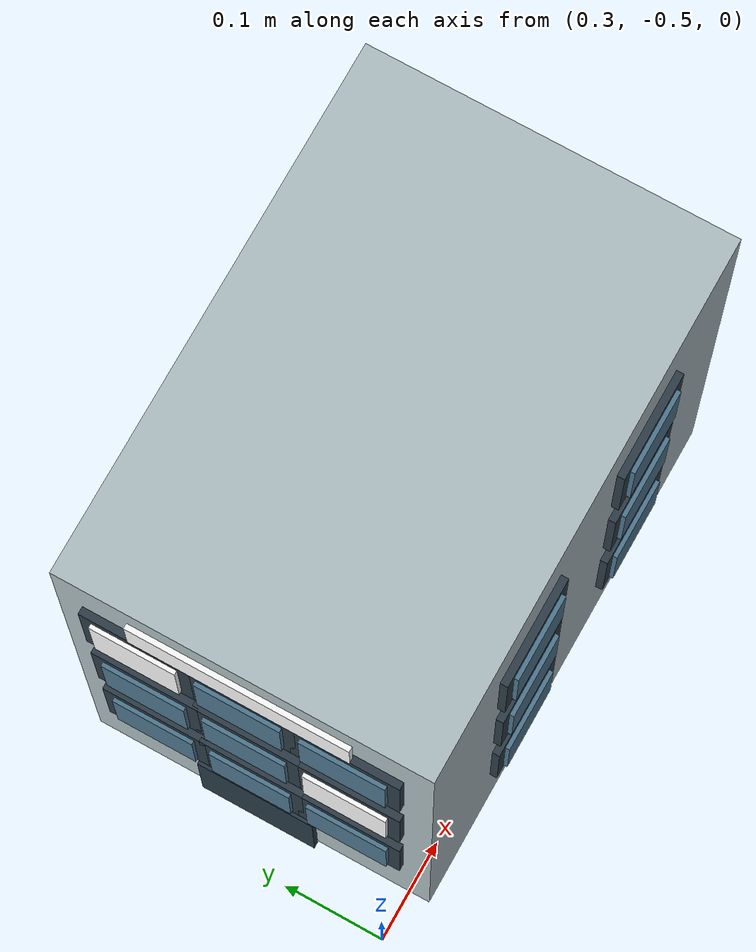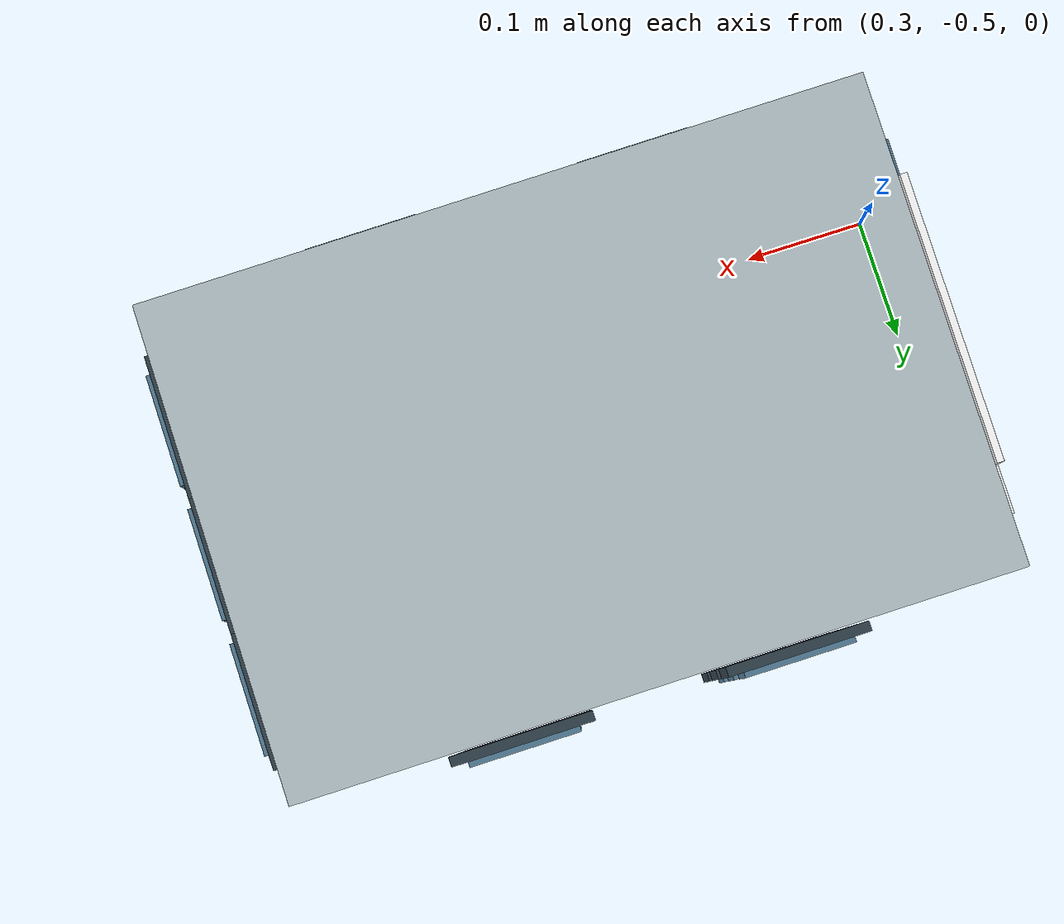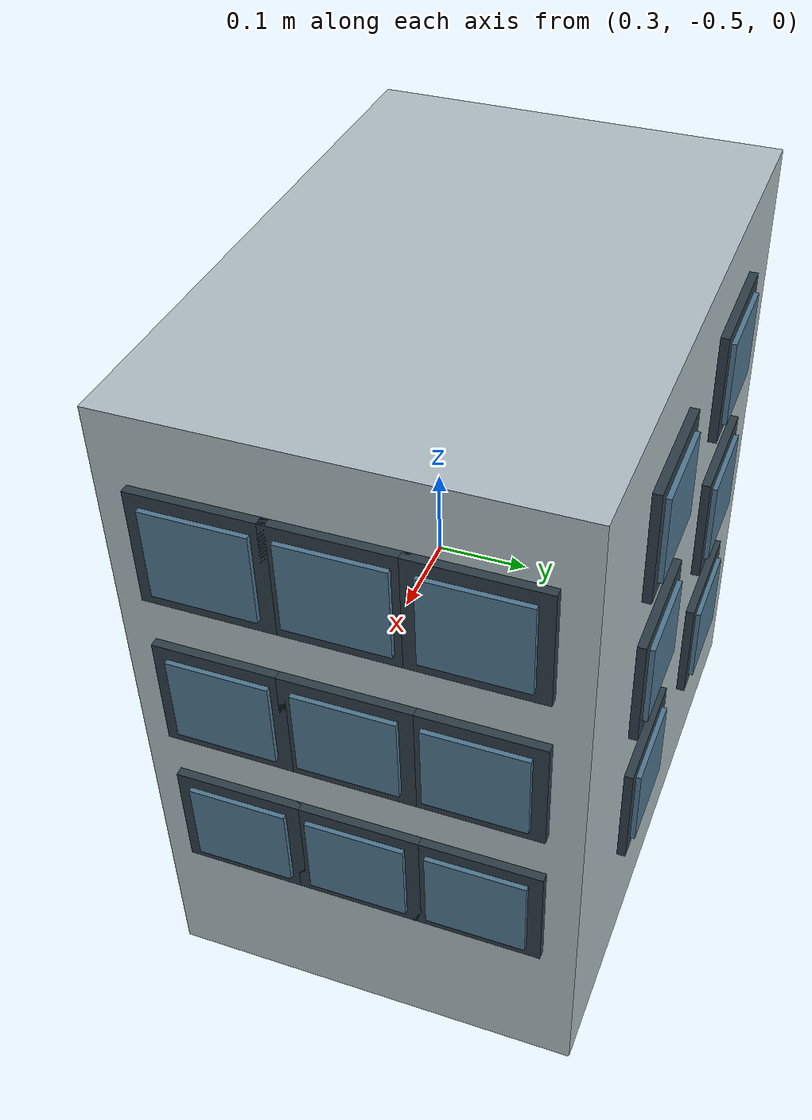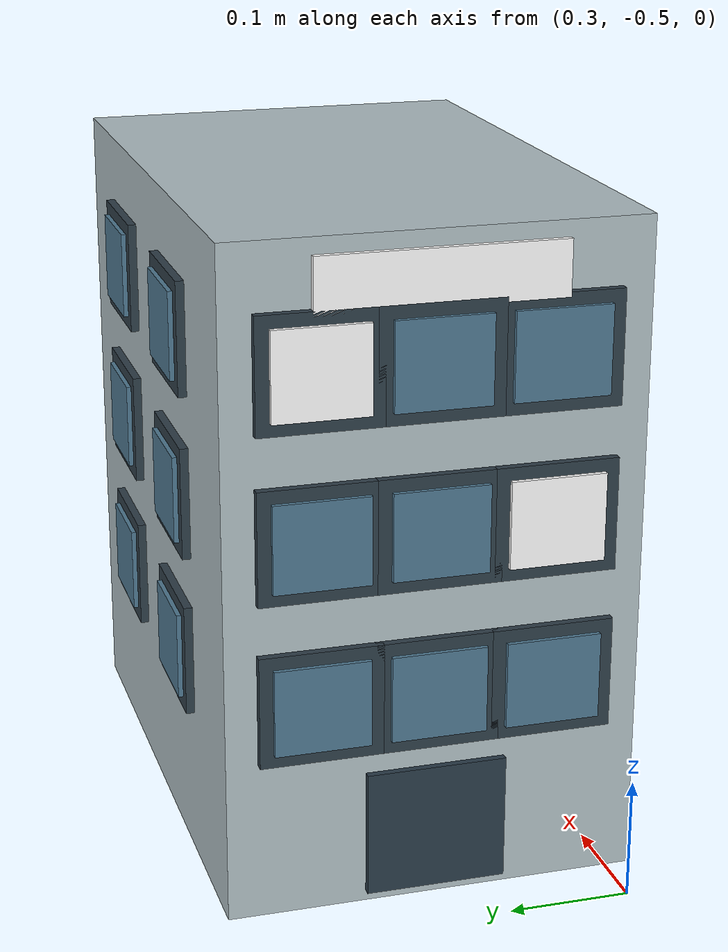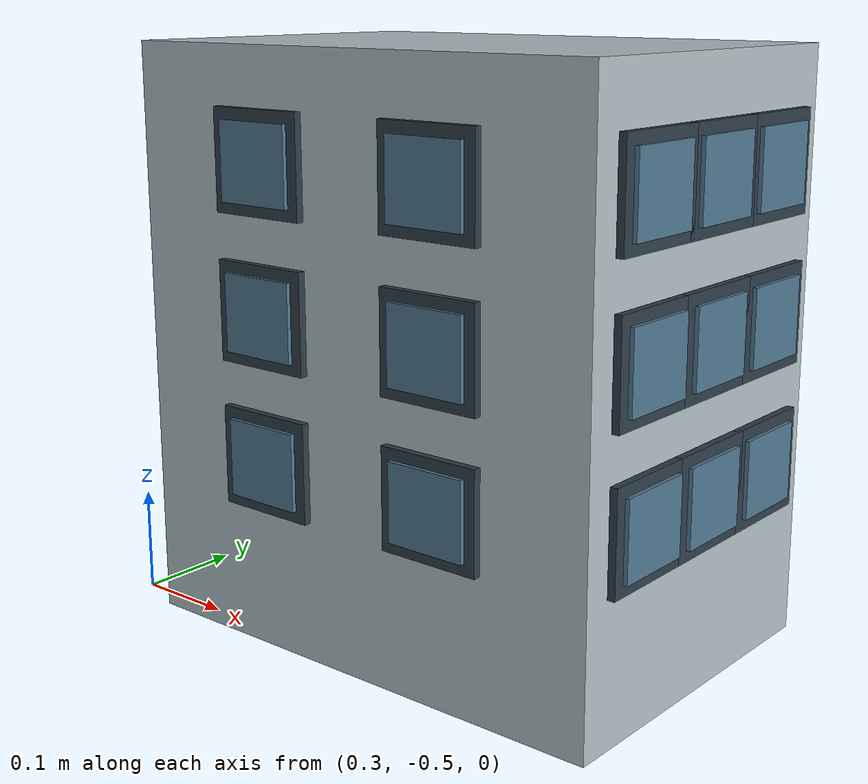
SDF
<sdf version="1.6">
 <world name="sq_community_4p2">
  <include><uri>model://sun</uri></include>
  <model name="sq4_building_C">
   <static>true</static>
   <pose>0.6000 -0.3500 0.0000 0 0 0.00000</pose>
   <link name="structure">
    <visual name="structure_vis">
     <pose>0.0000 0.0000 0.2750 0 0 0.00000</pose>
     <geometry><box><size>0.5000 0.3400 0.5500</size></box></geometry>
     <material>
      <ambient>0.6900 0.7500 0.7700 1.0000</ambient>
      <diffuse>0.6900 0.7500 0.7700 1.0000</diffuse>
     </material>
    </visual>
    <collision name="structure_col">
     <pose>0.0000 0.0000 0.2750 0 0 0.00000</pose>
     <geometry><box><size>0.5000 0.3400 0.5500</size></box></geometry>
    </collision>
   </link>
   <link name="nameplate">
    <visual name="nameplate_vis">
     <pose>-0.2560 0.0000 0.5150 0 0 0.00000</pose>
     <geometry><box><size>0.0050 0.2000 0.0450</size></box></geometry>
     <material>
      <script>
       <uri>model://sq_textures/materials/scripts</uri>
       <uri>model://sq_textures/materials/textures</uri>
       <name>SQ_bldg_C</name>
      </script>
      <ambient>1 1 1 1</ambient>
      <diffuse>1 1 1 1</diffuse>
     </material>
    </visual>
   </link>
   <link name="entry_door">
    <visual name="entry_door_vis">
     <pose>-0.2560 0.0000 0.0630 0 0 0.00000</pose>
     <geometry><box><size>0.0060 0.1150 0.1050</size></box></geometry>
     <material>
      <ambient>0.1600 0.2300 0.2800 1.0000</ambient>
      <diffuse>0.1600 0.2300 0.2800 1.0000</diffuse>
     </material>
    </visual>
   </link>
   <link name="window_f1_c1_frame">
    <visual name="window_f1_c1_frame_vis">
     <pose>-0.2550 -0.0944 0.1800 0 0 0.00000</pose>
     <geometry><box><size>0.0070 0.1000 0.0930</size></box></geometry>
     <material>
      <ambient>0.1800 0.2400 0.2800 1.0000</ambient>
      <diffuse>0.1800 0.2400 0.2800 1.0000</diffuse>
     </material>
    </visual>
   </link>
   <link name="window_f1_c1_glass">
    <visual name="window_f1_c1_glass_vis">
     <pose>-0.2590 -0.0944 0.1800 0 0 0.00000</pose>
     <geometry><box><size>0.0070 0.0780 0.0720</size></box></geometry>
     <material>
      <ambient>0.3100 0.4700 0.5700 1.0000</ambient>
      <diffuse>0.3100 0.4700 0.5700 1.0000</diffuse>
     </material>
    </visual>
   </link>
   <link name="window_f1_c2_frame">
    <visual name="window_f1_c2_frame_vis">
     <pose>-0.2550 0.0000 0.1800 0 0 0.00000</pose>
     <geometry><box><size>0.0070 0.1000 0.0930</size></box></geometry>
     <material>
      <ambient>0.1800 0.2400 0.2800 1.0000</ambient>
      <diffuse>0.1800 0.2400 0.2800 1.0000</diffuse>
     </material>
    </visual>
   </link>
   <link name="window_f1_c2_glass">
    <visual name="window_f1_c2_glass_vis">
     <pose>-0.2590 0.0000 0.1800 0 0 0.00000</pose>
     <geometry><box><size>0.0070 0.0780 0.0720</size></box></geometry>
     <material>
      <ambient>0.3100 0.4700 0.5700 1.0000</ambient>
      <diffuse>0.3100 0.4700 0.5700 1.0000</diffuse>
     </material>
    </visual>
   </link>
   <link name="window_f1_c3_frame">
    <visual name="window_f1_c3_frame_vis">
     <pose>-0.2550 0.0944 0.1800 0 0 0.00000</pose>
     <geometry><box><size>0.0070 0.1000 0.0930</size></box></geometry>
     <material>
      <ambient>0.1800 0.2400 0.2800 1.0000</ambient>
      <diffuse>0.1800 0.2400 0.2800 1.0000</diffuse>
     </material>
    </visual>
   </link>
   <link name="window_f1_c3_glass">
    <visual name="window_f1_c3_glass_vis">
     <pose>-0.2590 0.0944 0.1800 0 0 0.00000</pose>
     <geometry><box><size>0.0070 0.0780 0.0720</size></box></geometry>
     <material>
      <ambient>0.3100 0.4700 0.5700 1.0000</ambient>
      <diffuse>0.3100 0.4700 0.5700 1.0000</diffuse>
     </material>
    </visual>
   </link>
   <link name="window_f2_c1_frame">
    <visual name="window_f2_c1_frame_vis">
     <pose>-0.2550 -0.0944 0.3150 0 0 0.00000</pose>
     <geometry><box><size>0.0070 0.1000 0.0930</size></box></geometry>
     <material>
      <ambient>0.1800 0.2400 0.2800 1.0000</ambient>
      <diffuse>0.1800 0.2400 0.2800 1.0000</diffuse>
     </material>
    </visual>
   </link>
   <link name="window_f2_c1_glass">
    <visual name="window_f2_c1_glass_vis">
     <pose>-0.2590 -0.0944 0.3150 0 0 0.00000</pose>
     <geometry><box><size>0.0070 0.0780 0.0720</size></box></geometry>
     <material>
      <script>
       <uri>model://sq_textures/materials/scripts</uri>
       <uri>model://sq_textures/materials/textures</uri>
       <name>SQ_win_fire</name>
      </script>
      <ambient>1 1 1 1</ambient>
      <diffuse>1 1 1 1</diffuse>
     </material>
    </visual>
   </link>
   <link name="window_f2_c2_frame">
    <visual name="window_f2_c2_frame_vis">
     <pose>-0.2550 0.0000 0.3150 0 0 0.00000</pose>
     <geometry><box><size>0.0070 0.1000 0.0930</size></box></geometry>
     <material>
      <ambient>0.1800 0.2400 0.2800 1.0000</ambient>
      <diffuse>0.1800 0.2400 0.2800 1.0000</diffuse>
     </material>
    </visual>
   </link>
   <link name="window_f2_c2_glass">
    <visual name="window_f2_c2_glass_vis">
     <pose>-0.2590 0.0000 0.3150 0 0 0.00000</pose>
     <geometry><box><size>0.0070 0.0780 0.0720</size></box></geometry>
     <material>
      <ambient>0.3100 0.4700 0.5700 1.0000</ambient>
      <diffuse>0.3100 0.4700 0.5700 1.0000</diffuse>
     </material>
    </visual>
   </link>
   <link name="window_f2_c3_frame">
    <visual name="window_f2_c3_frame_vis">
     <pose>-0.2550 0.0944 0.3150 0 0 0.00000</pose>
     <geometry><box><size>0.0070 0.1000 0.0930</size></box></geometry>
     <material>
      <ambient>0.1800 0.2400 0.2800 1.0000</ambient>
      <diffuse>0.1800 0.2400 0.2800 1.0000</diffuse>
     </material>
    </visual>
   </link>
   <link name="window_f2_c3_glass">
    <visual name="window_f2_c3_glass_vis">
     <pose>-0.2590 0.0944 0.3150 0 0 0.00000</pose>
     <geometry><box><size>0.0070 0.0780 0.0720</size></box></geometry>
     <material>
      <ambient>0.3100 0.4700 0.5700 1.0000</ambient>
      <diffuse>0.3100 0.4700 0.5700 1.0000</diffuse>
     </material>
    </visual>
   </link>
   <link name="window_f3_c1_frame">
    <visual name="window_f3_c1_frame_vis">
     <pose>-0.2550 -0.0944 0.4500 0 0 0.00000</pose>
     <geometry><box><size>0.0070 0.1000 0.0930</size></box></geometry>
     <material>
      <ambient>0.1800 0.2400 0.2800 1.0000</ambient>
      <diffuse>0.1800 0.2400 0.2800 1.0000</diffuse>
     </material>
    </visual>
   </link>
   <link name="window_f3_c1_glass">
    <visual name="window_f3_c1_glass_vis">
     <pose>-0.2590 -0.0944 0.4500 0 0 0.00000</pose>
     <geometry><box><size>0.0070 0.0780 0.0720</size></box></geometry>
     <material>
      <ambient>0.3100 0.4700 0.5700 1.0000</ambient>
      <diffuse>0.3100 0.4700 0.5700 1.0000</diffuse>
     </material>
    </visual>
   </link>
   <link name="window_f3_c2_frame">
    <visual name="window_f3_c2_frame_vis">
     <pose>-0.2550 0.0000 0.4500 0 0 0.00000</pose>
     <geometry><box><size>0.0070 0.1000 0.0930</size></box></geometry>
     <material>
      <ambient>0.1800 0.2400 0.2800 1.0000</ambient>
      <diffuse>0.1800 0.2400 0.2800 1.0000</diffuse>
     </material>
    </visual>
   </link>
   <link name="window_f3_c2_glass">
    <visual name="window_f3_c2_glass_vis">
     <pose>-0.2590 0.0000 0.4500 0 0 0.00000</pose>
     <geometry><box><size>0.0070 0.0780 0.0720</size></box></geometry>
     <material>
      <ambient>0.3100 0.4700 0.5700 1.0000</ambient>
      <diffuse>0.3100 0.4700 0.5700 1.0000</diffuse>
     </material>
    </visual>
   </link>
   <link name="window_f3_c3_frame">
    <visual name="window_f3_c3_frame_vis">
     <pose>-0.2550 0.0944 0.4500 0 0 0.00000</pose>
     <geometry><box><size>0.0070 0.1000 0.0930</size></box></geometry>
     <material>
      <ambient>0.1800 0.2400 0.2800 1.0000</ambient>
      <diffuse>0.1800 0.2400 0.2800 1.0000</diffuse>
     </material>
    </visual>
   </link>
   <link name="window_f3_c3_glass">
    <visual name="window_f3_c3_glass_vis">
     <pose>-0.2590 0.0944 0.4500 0 0 0.00000</pose>
     <geometry><box><size>0.0070 0.0780 0.0720</size></box></geometry>
     <material>
      <script>
       <uri>model://sq_textures/materials/scripts</uri>
       <uri>model://sq_textures/materials/textures</uri>
       <name>SQ_win_fire</name>
      </script>
      <ambient>1 1 1 1</ambient>
      <diffuse>1 1 1 1</diffuse>
     </material>
    </visual>
   </link>
   <link name="side_north_f1_c1_frame">
    <visual name="side_north_f1_c1_frame_vis">
     <pose>-0.0962 0.1750 0.1800 0 0 0.00000</pose>
     <geometry><box><size>0.1000 0.0070 0.0930</size></box></geometry>
     <material>
      <ambient>0.1800 0.2400 0.2800 1.0000</ambient>
      <diffuse>0.1800 0.2400 0.2800 1.0000</diffuse>
     </material>
    </visual>
   </link>
   <link name="side_north_f1_c1_glass">
    <visual name="side_north_f1_c1_glass_vis">
     <pose>-0.0962 0.1790 0.1800 0 0 0.00000</pose>
     <geometry><box><size>0.0780 0.0070 0.0720</size></box></geometry>
     <material>
      <ambient>0.3100 0.4700 0.5700 1.0000</ambient>
      <diffuse>0.3100 0.4700 0.5700 1.0000</diffuse>
     </material>
    </visual>
   </link>
   <link name="side_north_f1_c2_frame">
    <visual name="side_north_f1_c2_frame_vis">
     <pose>0.0962 0.1750 0.1800 0 0 0.00000</pose>
     <geometry><box><size>0.1000 0.0070 0.0930</size></box></geometry>
     <material>
      <ambient>0.1800 0.2400 0.2800 1.0000</ambient>
      <diffuse>0.1800 0.2400 0.2800 1.0000</diffuse>
     </material>
    </visual>
   </link>
   <link name="side_north_f1_c2_glass">
    <visual name="side_north_f1_c2_glass_vis">
     <pose>0.0962 0.1790 0.1800 0 0 0.00000</pose>
     <geometry><box><size>0.0780 0.0070 0.0720</size></box></geometry>
     <material>
      <ambient>0.3100 0.4700 0.5700 1.0000</ambient>
      <diffuse>0.3100 0.4700 0.5700 1.0000</diffuse>
     </material>
    </visual>
   </link>
   <link name="side_north_f2_c1_frame">
    <visual name="side_north_f2_c1_frame_vis">
     <pose>-0.0962 0.1750 0.3150 0 0 0.00000</pose>
     <geometry><box><size>0.1000 0.0070 0.0930</size></box></geometry>
     <material>
      <ambient>0.1800 0.2400 0.2800 1.0000</ambient>
      <diffuse>0.1800 0.2400 0.2800 1.0000</diffuse>
     </material>
    </visual>
   </link>
   <link name="side_north_f2_c1_glass">
    <visual name="side_north_f2_c1_glass_vis">
     <pose>-0.0962 0.1790 0.3150 0 0 0.00000</pose>
     <geometry><box><size>0.0780 0.0070 0.0720</size></box></geometry>
     <material>
      <ambient>0.3100 0.4700 0.5700 1.0000</ambient>
      <diffuse>0.3100 0.4700 0.5700 1.0000</diffuse>
     </material>
    </visual>
   </link>
   <link name="side_north_f2_c2_frame">
    <visual name="side_north_f2_c2_frame_vis">
     <pose>0.0962 0.1750 0.3150 0 0 0.00000</pose>
     <geometry><box><size>0.1000 0.0070 0.0930</size></box></geometry>
     <material>
      <ambient>0.1800 0.2400 0.2800 1.0000</ambient>
      <diffuse>0.1800 0.2400 0.2800 1.0000</diffuse>
     </material>
    </visual>
   </link>
   <link name="side_north_f2_c2_glass">
    <visual name="side_north_f2_c2_glass_vis">
     <pose>0.0962 0.1790 0.3150 0 0 0.00000</pose>
     <geometry><box><size>0.0780 0.0070 0.0720</size></box></geometry>
     <material>
      <ambient>0.3100 0.4700 0.5700 1.0000</ambient>
      <diffuse>0.3100 0.4700 0.5700 1.0000</diffuse>
     </material>
    </visual>
   </link>
   <link name="side_north_f3_c1_frame">
    <visual name="side_north_f3_c1_frame_vis">
     <pose>-0.0962 0.1750 0.4500 0 0 0.00000</pose>
     <geometry><box><size>0.1000 0.0070 0.0930</size></box></geometry>
     <material>
      <ambient>0.1800 0.2400 0.2800 1.0000</ambient>
      <diffuse>0.1800 0.2400 0.2800 1.0000</diffuse>
     </material>
    </visual>
   </link>
   <link name="side_north_f3_c1_glass">
    <visual name="side_north_f3_c1_glass_vis">
     <pose>-0.0962 0.1790 0.4500 0 0 0.00000</pose>
     <geometry><box><size>0.0780 0.0070 0.0720</size></box></geometry>
     <material>
      <ambient>0.3100 0.4700 0.5700 1.0000</ambient>
      <diffuse>0.3100 0.4700 0.5700 1.0000</diffuse>
     </material>
    </visual>
   </link>
   <link name="side_north_f3_c2_frame">
    <visual name="side_north_f3_c2_frame_vis">
     <pose>0.0962 0.1750 0.4500 0 0 0.00000</pose>
     <geometry><box><size>0.1000 0.0070 0.0930</size></box></geometry>
     <material>
      <ambient>0.1800 0.2400 0.2800 1.0000</ambient>
      <diffuse>0.1800 0.2400 0.2800 1.0000</diffuse>
     </material>
    </visual>
   </link>
   <link name="side_north_f3_c2_glass">
    <visual name="side_north_f3_c2_glass_vis">
     <pose>0.0962 0.1790 0.4500 0 0 0.00000</pose>
     <geometry><box><size>0.0780 0.0070 0.0720</size></box></geometry>
     <material>
      <ambient>0.3100 0.4700 0.5700 1.0000</ambient>
      <diffuse>0.3100 0.4700 0.5700 1.0000</diffuse>
     </material>
    </visual>
   </link>
   <link name="side_south_f1_c1_frame">
    <visual name="side_south_f1_c1_frame_vis">
     <pose>-0.0962 -0.1750 0.1800 0 0 0.00000</pose>
     <geometry><box><size>0.1000 0.0070 0.0930</size></box></geometry>
     <material>
      <ambient>0.1800 0.2400 0.2800 1.0000</ambient>
      <diffuse>0.1800 0.2400 0.2800 1.0000</diffuse>
     </material>
    </visual>
   </link>
   <link name="side_south_f1_c1_glass">
    <visual name="side_south_f1_c1_glass_vis">
     <pose>-0.0962 -0.1790 0.1800 0 0 0.00000</pose>
     <geometry><box><size>0.0780 0.0070 0.0720</size></box></geometry>
     <material>
      <ambient>0.3100 0.4700 0.5700 1.0000</ambient>
      <diffuse>0.3100 0.4700 0.5700 1.0000</diffuse>
     </material>
    </visual>
   </link>
   <link name="side_south_f1_c2_frame">
    <visual name="side_south_f1_c2_frame_vis">
     <pose>0.0962 -0.1750 0.1800 0 0 0.00000</pose>
     <geometry><box><size>0.1000 0.0070 0.0930</size></box></geometry>
     <material>
      <ambient>0.1800 0.2400 0.2800 1.0000</ambient>
      <diffuse>0.1800 0.2400 0.2800 1.0000</diffuse>
     </material>
    </visual>
   </link>
   <link name="side_south_f1_c2_glass">
    <visual name="side_south_f1_c2_glass_vis">
     <pose>0.0962 -0.1790 0.1800 0 0 0.00000</pose>
     <geometry><box><size>0.0780 0.0070 0.0720</size></box></geometry>
     <material>
      <ambient>0.3100 0.4700 0.5700 1.0000</ambient>
      <diffuse>0.3100 0.4700 0.5700 1.0000</diffuse>
     </material>
    </visual>
   </link>
   <link name="side_south_f2_c1_frame">
    <visual name="side_south_f2_c1_frame_vis">
     <pose>-0.0962 -0.1750 0.3150 0 0 0.00000</pose>
     <geometry><box><size>0.1000 0.0070 0.0930</size></box></geometry>
     <material>
      <ambient>0.1800 0.2400 0.2800 1.0000</ambient>
      <diffuse>0.1800 0.2400 0.2800 1.0000</diffuse>
     </material>
    </visual>
   </link>
   <link name="side_south_f2_c1_glass">
    <visual name="side_south_f2_c1_glass_vis">
     <pose>-0.0962 -0.1790 0.3150 0 0 0.00000</pose>
     <geometry><box><size>0.0780 0.0070 0.0720</size></box></geometry>
     <material>
      <ambient>0.3100 0.4700 0.5700 1.0000</ambient>
      <diffuse>0.3100 0.4700 0.5700 1.0000</diffuse>
     </material>
    </visual>
   </link>
   <link name="side_south_f2_c2_frame">
    <visual name="side_south_f2_c2_frame_vis">
     <pose>0.0962 -0.1750 0.3150 0 0 0.00000</pose>
     <geometry><box><size>0.1000 0.0070 0.0930</size></box></geometry>
     <material>
      <ambient>0.1800 0.2400 0.2800 1.0000</ambient>
      <diffuse>0.1800 0.2400 0.2800 1.0000</diffuse>
     </material>
    </visual>
   </link>
   <link name="side_south_f2_c2_glass">
    <visual name="side_south_f2_c2_glass_vis">
     <pose>0.0962 -0.1790 0.3150 0 0 0.00000</pose>
     <geometry><box><size>0.0780 0.0070 0.0720</size></box></geometry>
     <material>
      <ambient>0.3100 0.4700 0.5700 1.0000</ambient>
      <diffuse>0.3100 0.4700 0.5700 1.0000</diffuse>
     </material>
    </visual>
   </link>
   <link name="side_south_f3_c1_frame">
    <visual name="side_south_f3_c1_frame_vis">
     <pose>-0.0962 -0.1750 0.4500 0 0 0.00000</pose>
     <geometry><box><size>0.1000 0.0070 0.0930</size></box></geometry>
     <material>
      <ambient>0.1800 0.2400 0.2800 1.0000</ambient>
      <diffuse>0.1800 0.2400 0.2800 1.0000</diffuse>
     </material>
    </visual>
   </link>
   <link name="side_south_f3_c1_glass">
    <visual name="side_south_f3_c1_glass_vis">
     <pose>-0.0962 -0.1790 0.4500 0 0 0.00000</pose>
     <geometry><box><size>0.0780 0.0070 0.0720</size></box></geometry>
     <material>
      <ambient>0.3100 0.4700 0.5700 1.0000</ambient>
      <diffuse>0.3100 0.4700 0.5700 1.0000</diffuse>
     </material>
    </visual>
   </link>
   <link name="side_south_f3_c2_frame">
    <visual name="side_south_f3_c2_frame_vis">
     <pose>0.0962 -0.1750 0.4500 0 0 0.00000</pose>
     <geometry><box><size>0.1000 0.0070 0.0930</size></box></geometry>
     <material>
      <ambient>0.1800 0.2400 0.2800 1.0000</ambient>
      <diffuse>0.1800 0.2400 0.2800 1.0000</diffuse>
     </material>
    </visual>
   </link>
   <link name="side_south_f3_c2_glass">
    <visual name="side_south_f3_c2_glass_vis">
     <pose>0.0962 -0.1790 0.4500 0 0 0.00000</pose>
     <geometry><box><size>0.0780 0.0070 0.0720</size></box></geometry>
     <material>
      <ambient>0.3100 0.4700 0.5700 1.0000</ambient>
      <diffuse>0.3100 0.4700 0.5700 1.0000</diffuse>
     </material>
    </visual>
   </link>
   <link name="rear_f1_c1_frame">
    <visual name="rear_f1_c1_frame_vis">
     <pose>0.2550 -0.0944 0.1800 0 0 0.00000</pose>
     <geometry><box><size>0.0070 0.1000 0.0930</size></box></geometry>
     <material>
      <ambient>0.1800 0.2400 0.2800 1.0000</ambient>
      <diffuse>0.1800 0.2400 0.2800 1.0000</diffuse>
     </material>
    </visual>
   </link>
   <link name="rear_f1_c1_glass">
    <visual name="rear_f1_c1_glass_vis">
     <pose>0.2590 -0.0944 0.1800 0 0 0.00000</pose>
     <geometry><box><size>0.0070 0.0780 0.0720</size></box></geometry>
     <material>
      <ambient>0.3100 0.4700 0.5700 1.0000</ambient>
      <diffuse>0.3100 0.4700 0.5700 1.0000</diffuse>
     </material>
    </visual>
   </link>
   <link name="rear_f1_c2_frame">
    <visual name="rear_f1_c2_frame_vis">
     <pose>0.2550 0.0000 0.1800 0 0 0.00000</pose>
     <geometry><box><size>0.0070 0.1000 0.0930</size></box></geometry>
     <material>
      <ambient>0.1800 0.2400 0.2800 1.0000</ambient>
      <diffuse>0.1800 0.2400 0.2800 1.0000</diffuse>
     </material>
    </visual>
   </link>
   <link name="rear_f1_c2_glass">
    <visual name="rear_f1_c2_glass_vis">
     <pose>0.2590 0.0000 0.1800 0 0 0.00000</pose>
     <geometry><box><size>0.0070 0.0780 0.0720</size></box></geometry>
     <material>
      <ambient>0.3100 0.4700 0.5700 1.0000</ambient>
      <diffuse>0.3100 0.4700 0.5700 1.0000</diffuse>
     </material>
    </visual>
   </link>
   <link name="rear_f1_c3_frame">
    <visual name="rear_f1_c3_frame_vis">
     <pose>0.2550 0.0944 0.1800 0 0 0.00000</pose>
     <geometry><box><size>0.0070 0.1000 0.0930</size></box></geometry>
     <material>
      <ambient>0.1800 0.2400 0.2800 1.0000</ambient>
      <diffuse>0.1800 0.2400 0.2800 1.0000</diffuse>
     </material>
    </visual>
   </link>
   <link name="rear_f1_c3_glass">
    <visual name="rear_f1_c3_glass_vis">
     <pose>0.2590 0.0944 0.1800 0 0 0.00000</pose>
     <geometry><box><size>0.0070 0.0780 0.0720</size></box></geometry>
     <material>
      <ambient>0.3100 0.4700 0.5700 1.0000</ambient>
      <diffuse>0.3100 0.4700 0.5700 1.0000</diffuse>
     </material>
    </visual>
   </link>
   <link name="rear_f2_c1_frame">
    <visual name="rear_f2_c1_frame_vis">
     <pose>0.2550 -0.0944 0.3150 0 0 0.00000</pose>
     <geometry><box><size>0.0070 0.1000 0.0930</size></box></geometry>
     <material>
      <ambient>0.1800 0.2400 0.2800 1.0000</ambient>
      <diffuse>0.1800 0.2400 0.2800 1.0000</diffuse>
     </material>
    </visual>
   </link>
   <link name="rear_f2_c1_glass">
    <visual name="rear_f2_c1_glass_vis">
     <pose>0.2590 -0.0944 0.3150 0 0 0.00000</pose>
     <geometry><box><size>0.0070 0.0780 0.0720</size></box></geometry>
     <material>
      <ambient>0.3100 0.4700 0.5700 1.0000</ambient>
      <diffuse>0.3100 0.4700 0.5700 1.0000</diffuse>
     </material>
    </visual>
   </link>
   <link name="rear_f2_c2_frame">
    <visual name="rear_f2_c2_frame_vis">
     <pose>0.2550 0.0000 0.3150 0 0 0.00000</pose>
     <geometry><box><size>0.0070 0.1000 0.0930</size></box></geometry>
     <material>
      <ambient>0.1800 0.2400 0.2800 1.0000</ambient>
      <diffuse>0.1800 0.2400 0.2800 1.0000</diffuse>
     </material>
    </visual>
   </link>
   <link name="rear_f2_c2_glass">
    <visual name="rear_f2_c2_glass_vis">
     <pose>0.2590 0.0000 0.3150 0 0 0.00000</pose>
     <geometry><box><size>0.0070 0.0780 0.0720</size></box></geometry>
     <material>
      <ambient>0.3100 0.4700 0.5700 1.0000</ambient>
      <diffuse>0.3100 0.4700 0.5700 1.0000</diffuse>
     </material>
    </visual>
   </link>
   <link name="rear_f2_c3_frame">
    <visual name="rear_f2_c3_frame_vis">
     <pose>0.2550 0.0944 0.3150 0 0 0.00000</pose>
     <geometry><box><size>0.0070 0.1000 0.0930</size></box></geometry>
     <material>
      <ambient>0.1800 0.2400 0.2800 1.0000</ambient>
      <diffuse>0.1800 0.2400 0.2800 1.0000</diffuse>
     </material>
    </visual>
   </link>
   <link name="rear_f2_c3_glass">
    <visual name="rear_f2_c3_glass_vis">
     <pose>0.2590 0.0944 0.3150 0 0 0.00000</pose>
     <geometry><box><size>0.0070 0.0780 0.0720</size></box></geometry>
     <material>
      <ambient>0.3100 0.4700 0.5700 1.0000</ambient>
      <diffuse>0.3100 0.4700 0.5700 1.0000</diffuse>
     </material>
    </visual>
   </link>
   <link name="rear_f3_c1_frame">
    <visual name="rear_f3_c1_frame_vis">
     <pose>0.2550 -0.0944 0.4500 0 0 0.00000</pose>
     <geometry><box><size>0.0070 0.1000 0.0930</size></box></geometry>
     <material>
      <ambient>0.1800 0.2400 0.2800 1.0000</ambient>
      <diffuse>0.1800 0.2400 0.2800 1.0000</diffuse>
     </material>
    </visual>
   </link>
   <link name="rear_f3_c1_glass">
    <visual name="rear_f3_c1_glass_vis">
     <pose>0.2590 -0.0944 0.4500 0 0 0.00000</pose>
     <geometry><box><size>0.0070 0.0780 0.0720</size></box></geometry>
     <material>
      <ambient>0.3100 0.4700 0.5700 1.0000</ambient>
      <diffuse>0.3100 0.4700 0.5700 1.0000</diffuse>
     </material>
    </visual>
   </link>
   <link name="rear_f3_c2_frame">
    <visual name="rear_f3_c2_frame_vis">
     <pose>0.2550 0.0000 0.4500 0 0 0.00000</pose>
     <geometry><box><size>0.0070 0.1000 0.0930</size></box></geometry>
     <material>
      <ambient>0.1800 0.2400 0.2800 1.0000</ambient>
      <diffuse>0.1800 0.2400 0.2800 1.0000</diffuse>
     </material>
    </visual>
   </link>
   <link name="rear_f3_c2_glass">
    <visual name="rear_f3_c2_glass_vis">
     <pose>0.2590 0.0000 0.4500 0 0 0.00000</pose>
     <geometry><box><size>0.0070 0.0780 0.0720</size></box></geometry>
     <material>
      <ambient>0.3100 0.4700 0.5700 1.0000</ambient>
      <diffuse>0.3100 0.4700 0.5700 1.0000</diffuse>
     </material>
    </visual>
   </link>
   <link name="rear_f3_c3_frame">
    <visual name="rear_f3_c3_frame_vis">
     <pose>0.2550 0.0944 0.4500 0 0 0.00000</pose>
     <geometry><box><size>0.0070 0.1000 0.0930</size></box></geometry>
     <material>
      <ambient>0.1800 0.2400 0.2800 1.0000</ambient>
      <diffuse>0.1800 0.2400 0.2800 1.0000</diffuse>
     </material>
    </visual>
   </link>
   <link name="rear_f3_c3_glass">
    <visual name="rear_f3_c3_glass_vis">
     <pose>0.2590 0.0944 0.4500 0 0 0.00000</pose>
     <geometry><box><size>0.0070 0.0780 0.0720</size></box></geometry>
     <material>
      <ambient>0.3100 0.4700 0.5700 1.0000</ambient>
      <diffuse>0.3100 0.4700 0.5700 1.0000</diffuse>
     </material>
    </visual>
   </link>
  </model>
 </world>
</sdf>
